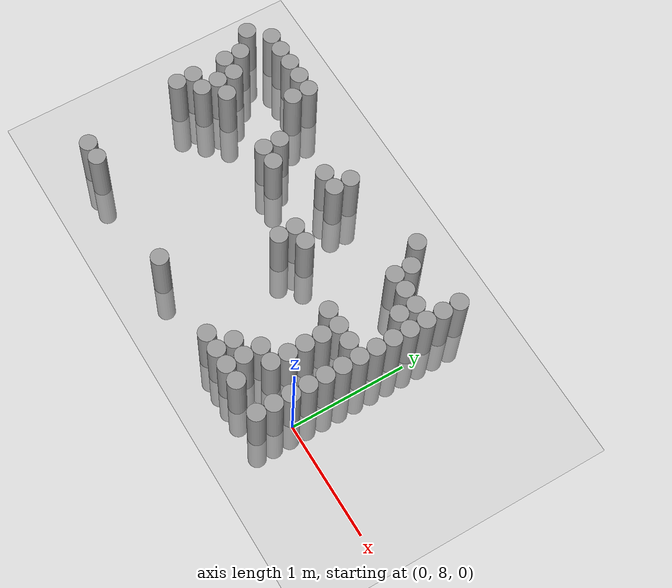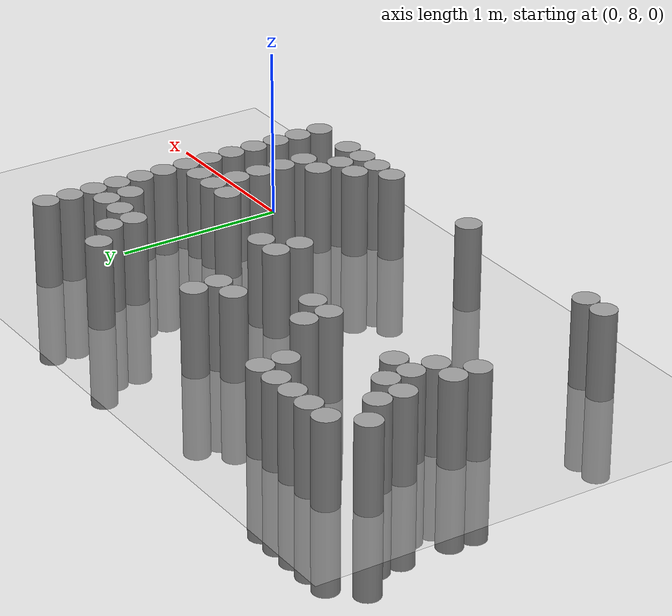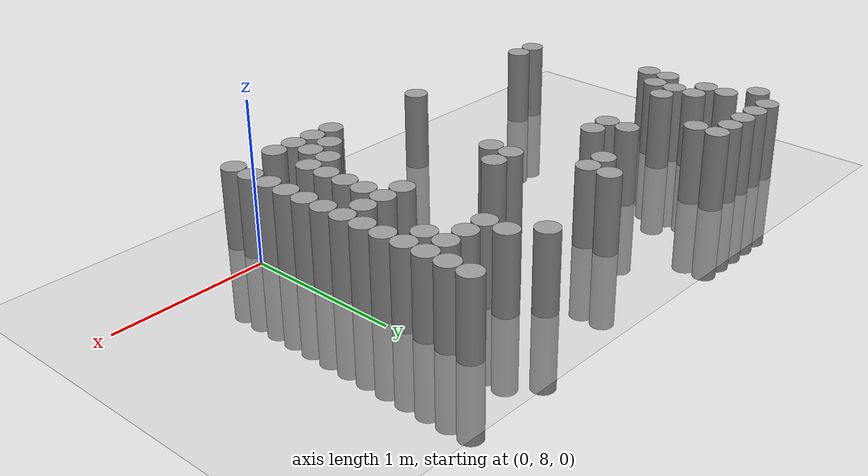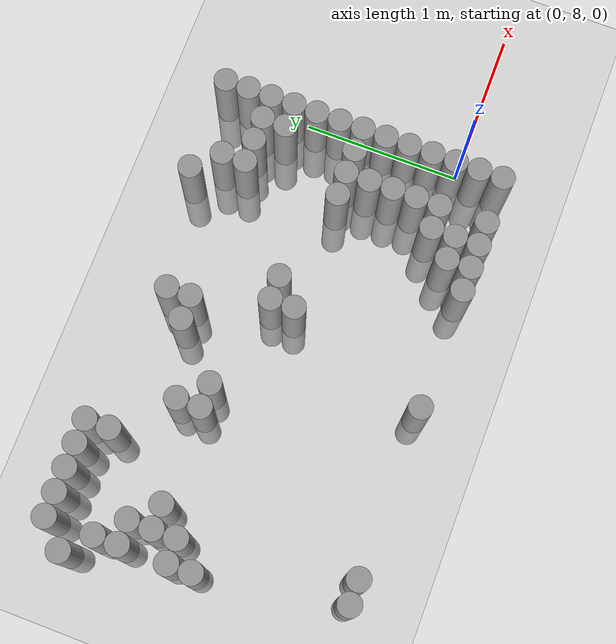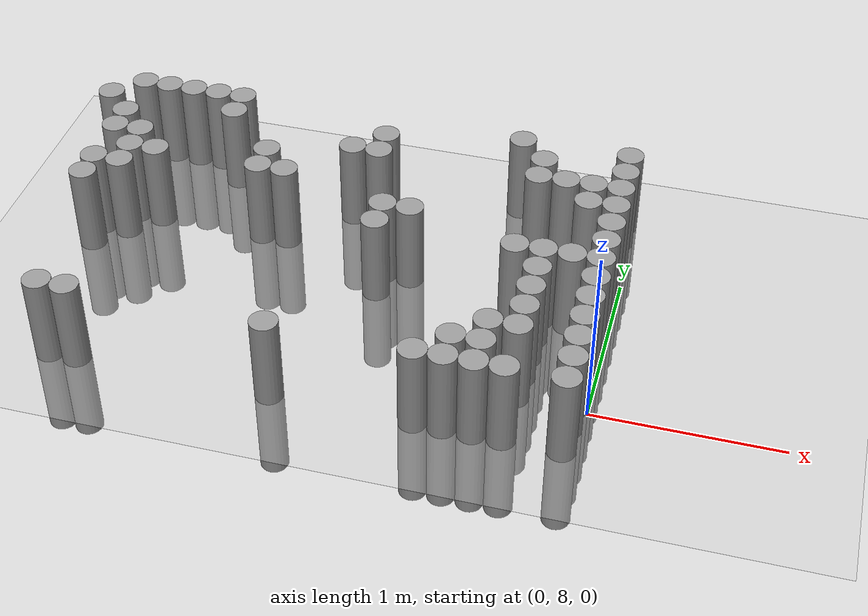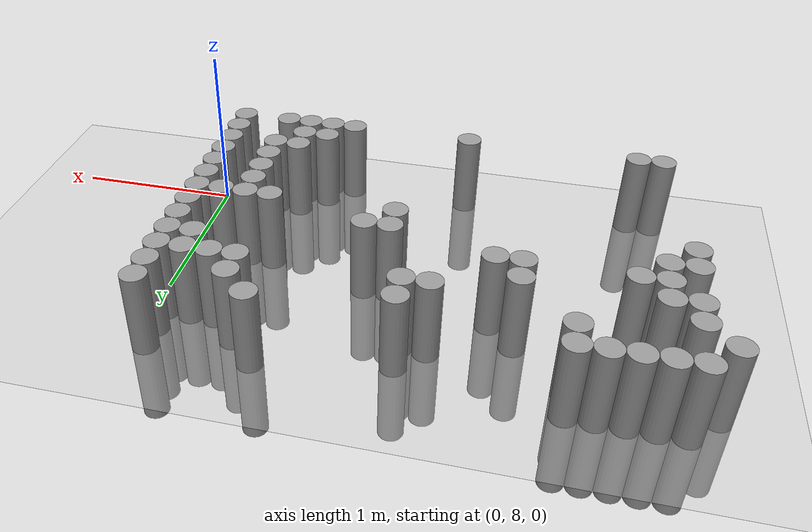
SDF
<sdf version="1.6">
 <world name="default">
  <model name="ground_plane">
   <static>1</static>
   <static>1</static>
   <link name="link">
    <collision name="collision">
     <geometry><plane><normal>0 0 1</normal><size>100 100</size></plane></geometry>
     <surface><friction><ode><mu>100</mu><mu2>50</mu2></ode></friction></surface>
    </collision>
    <visual name="visual">
     <cast_shadows>0</cast_shadows>
     <geometry><plane><normal>0 0 1</normal><size>100 100</size></plane></geometry>
     <material>
      <script><uri>file://media/materials/scripts/gazebo.material</uri><name>Gazebo/Grey</name></script>
     </material>
    </visual>
   </link>
  </model>
  <model name="unit_cylinder_167">
   <static>1</static>
   <pose>-3.075000 9.375000 0.000000 0.000000 0.000000 0.000000</pose>
   <link name="link">
    <inertial>
     <mass>1</mass>
     <inertia><ixx>0.145833</ixx><ixy>0</ixy><ixz>0</ixz><iyy>0.145833</iyy><iyz>0</iyz><izz>0.125</izz></inertia>
    </inertial>
    <collision name="collision">
     <geometry><cylinder><radius>0.075000</radius><length>1</length></cylinder></geometry>
    </collision>
    <visual name="visual">
     <geometry><cylinder><radius>0.075000</radius><length>1</length></cylinder></geometry>
     <material>
      <script><name>Gazebo/Grey</name><uri>file://media/materials/scripts/gazebo.material</uri></script>
     </material>
    </visual>
   </link>
  </model>
  <model name="unit_cylinder_169">
   <static>1</static>
   <pose>-2.925000 8.625000 0.000000 0.000000 0.000000 0.000000</pose>
   <link name="link">
    <inertial>
     <mass>1</mass>
     <inertia><ixx>0.145833</ixx><ixy>0</ixy><ixz>0</ixz><iyy>0.145833</iyy><iyz>0</iyz><izz>0.125</izz></inertia>
    </inertial>
    <collision name="collision">
     <geometry><cylinder><radius>0.075000</radius><length>1</length></cylinder></geometry>
    </collision>
    <visual name="visual">
     <geometry><cylinder><radius>0.075000</radius><length>1</length></cylinder></geometry>
     <material>
      <script><name>Gazebo/Grey</name><uri>file://media/materials/scripts/gazebo.material</uri></script>
     </material>
    </visual>
   </link>
  </model>
  <model name="unit_cylinder_170">
   <static>1</static>
   <pose>-2.925000 8.775000 0.000000 0.000000 0.000000 0.000000</pose>
   <link name="link">
    <inertial>
     <mass>1</mass>
     <inertia><ixx>0.145833</ixx><ixy>0</ixy><ixz>0</ixz><iyy>0.145833</iyy><iyz>0</iyz><izz>0.125</izz></inertia>
    </inertial>
    <collision name="collision">
     <geometry><cylinder><radius>0.075000</radius><length>1</length></cylinder></geometry>
    </collision>
    <visual name="visual">
     <geometry><cylinder><radius>0.075000</radius><length>1</length></cylinder></geometry>
     <material>
      <script><name>Gazebo/Grey</name><uri>file://media/materials/scripts/gazebo.material</uri></script>
     </material>
    </visual>
   </link>
  </model>
  <model name="unit_cylinder_171">
   <static>1</static>
   <pose>-2.925000 9.075000 0.000000 0.000000 0.000000 0.000000</pose>
   <link name="link">
    <inertial>
     <mass>1</mass>
     <inertia><ixx>0.145833</ixx><ixy>0</ixy><ixz>0</ixz><iyy>0.145833</iyy><iyz>0</iyz><izz>0.125</izz></inertia>
    </inertial>
    <collision name="collision">
     <geometry><cylinder><radius>0.075000</radius><length>1</length></cylinder></geometry>
    </collision>
    <visual name="visual">
     <geometry><cylinder><radius>0.075000</radius><length>1</length></cylinder></geometry>
     <material>
      <script><name>Gazebo/Grey</name><uri>file://media/materials/scripts/gazebo.material</uri></script>
     </material>
    </visual>
   </link>
  </model>
  <model name="unit_cylinder_172">
   <static>1</static>
   <pose>-2.925000 9.225000 0.000000 0.000000 0.000000 0.000000</pose>
   <link name="link">
    <inertial>
     <mass>1</mass>
     <inertia><ixx>0.145833</ixx><ixy>0</ixy><ixz>0</ixz><iyy>0.145833</iyy><iyz>0</iyz><izz>0.125</izz></inertia>
    </inertial>
    <collision name="collision">
     <geometry><cylinder><radius>0.075000</radius><length>1</length></cylinder></geometry>
    </collision>
    <visual name="visual">
     <geometry><cylinder><radius>0.075000</radius><length>1</length></cylinder></geometry>
     <material>
      <script><name>Gazebo/Grey</name><uri>file://media/materials/scripts/gazebo.material</uri></script>
     </material>
    </visual>
   </link>
  </model>
  <model name="unit_cylinder_173">
   <static>1</static>
   <pose>-2.925000 9.525000 0.000000 0.000000 0.000000 0.000000</pose>
   <link name="link">
    <inertial>
     <mass>1</mass>
     <inertia><ixx>0.145833</ixx><ixy>0</ixy><ixz>0</ixz><iyy>0.145833</iyy><iyz>0</iyz><izz>0.125</izz></inertia>
    </inertial>
    <collision name="collision">
     <geometry><cylinder><radius>0.075000</radius><length>1</length></cylinder></geometry>
    </collision>
    <visual name="visual">
     <geometry><cylinder><radius>0.075000</radius><length>1</length></cylinder></geometry>
     <material>
      <script><name>Gazebo/Grey</name><uri>file://media/materials/scripts/gazebo.material</uri></script>
     </material>
    </visual>
   </link>
  </model>
  <model name="unit_cylinder_176">
   <static>1</static>
   <pose>-2.775000 7.725000 0.000000 0.000000 0.000000 0.000000</pose>
   <link name="link">
    <inertial>
     <mass>1</mass>
     <inertia><ixx>0.145833</ixx><ixy>0</ixy><ixz>0</ixz><iyy>0.145833</iyy><iyz>0</iyz><izz>0.125</izz></inertia>
    </inertial>
    <collision name="collision">
     <geometry><cylinder><radius>0.075000</radius><length>1</length></cylinder></geometry>
    </collision>
    <visual name="visual">
     <geometry><cylinder><radius>0.075000</radius><length>1</length></cylinder></geometry>
     <material>
      <script><name>Gazebo/Grey</name><uri>file://media/materials/scripts/gazebo.material</uri></script>
     </material>
    </visual>
   </link>
  </model>
  <model name="unit_cylinder_177">
   <static>1</static>
   <pose>-2.775000 8.775000 0.000000 0.000000 0.000000 0.000000</pose>
   <link name="link">
    <inertial>
     <mass>1</mass>
     <inertia><ixx>0.145833</ixx><ixy>0</ixy><ixz>0</ixz><iyy>0.145833</iyy><iyz>0</iyz><izz>0.125</izz></inertia>
    </inertial>
    <collision name="collision">
     <geometry><cylinder><radius>0.075000</radius><length>1</length></cylinder></geometry>
    </collision>
    <visual name="visual">
     <geometry><cylinder><radius>0.075000</radius><length>1</length></cylinder></geometry>
     <material>
      <script><name>Gazebo/Grey</name><uri>file://media/materials/scripts/gazebo.material</uri></script>
     </material>
    </visual>
   </link>
  </model>
  <model name="unit_cylinder_178">
   <static>1</static>
   <pose>-2.775000 8.925000 0.000000 0.000000 0.000000 0.000000</pose>
   <link name="link">
    <inertial>
     <mass>1</mass>
     <inertia><ixx>0.145833</ixx><ixy>0</ixy><ixz>0</ixz><iyy>0.145833</iyy><iyz>0</iyz><izz>0.125</izz></inertia>
    </inertial>
    <collision name="collision">
     <geometry><cylinder><radius>0.075000</radius><length>1</length></cylinder></geometry>
    </collision>
    <visual name="visual">
     <geometry><cylinder><radius>0.075000</radius><length>1</length></cylinder></geometry>
     <material>
      <script><name>Gazebo/Grey</name><uri>file://media/materials/scripts/gazebo.material</uri></script>
     </material>
    </visual>
   </link>
  </model>
  <model name="unit_cylinder_179">
   <static>1</static>
   <pose>-2.775000 9.075000 0.000000 0.000000 0.000000 0.000000</pose>
   <link name="link">
    <inertial>
     <mass>1</mass>
     <inertia><ixx>0.145833</ixx><ixy>0</ixy><ixz>0</ixz><iyy>0.145833</iyy><iyz>0</iyz><izz>0.125</izz></inertia>
    </inertial>
    <collision name="collision">
     <geometry><cylinder><radius>0.075000</radius><length>1</length></cylinder></geometry>
    </collision>
    <visual name="visual">
     <geometry><cylinder><radius>0.075000</radius><length>1</length></cylinder></geometry>
     <material>
      <script><name>Gazebo/Grey</name><uri>file://media/materials/scripts/gazebo.material</uri></script>
     </material>
    </visual>
   </link>
  </model>
  <model name="unit_cylinder_180">
   <static>1</static>
   <pose>-2.775000 9.525000 0.000000 0.000000 0.000000 0.000000</pose>
   <link name="link">
    <inertial>
     <mass>1</mass>
     <inertia><ixx>0.145833</ixx><ixy>0</ixy><ixz>0</ixz><iyy>0.145833</iyy><iyz>0</iyz><izz>0.125</izz></inertia>
    </inertial>
    <collision name="collision">
     <geometry><cylinder><radius>0.075000</radius><length>1</length></cylinder></geometry>
    </collision>
    <visual name="visual">
     <geometry><cylinder><radius>0.075000</radius><length>1</length></cylinder></geometry>
     <material>
      <script><name>Gazebo/Grey</name><uri>file://media/materials/scripts/gazebo.material</uri></script>
     </material>
    </visual>
   </link>
  </model>
  <model name="unit_cylinder_182">
   <static>1</static>
   <pose>-2.625000 7.725000 0.000000 0.000000 0.000000 0.000000</pose>
   <link name="link">
    <inertial>
     <mass>1</mass>
     <inertia><ixx>0.145833</ixx><ixy>0</ixy><ixz>0</ixz><iyy>0.145833</iyy><iyz>0</iyz><izz>0.125</izz></inertia>
    </inertial>
    <collision name="collision">
     <geometry><cylinder><radius>0.075000</radius><length>1</length></cylinder></geometry>
    </collision>
    <visual name="visual">
     <geometry><cylinder><radius>0.075000</radius><length>1</length></cylinder></geometry>
     <material>
      <script><name>Gazebo/Grey</name><uri>file://media/materials/scripts/gazebo.material</uri></script>
     </material>
    </visual>
   </link>
  </model>
  <model name="unit_cylinder_183">
   <static>1</static>
   <pose>-2.625000 8.925000 0.000000 0.000000 0.000000 0.000000</pose>
   <link name="link">
    <inertial>
     <mass>1</mass>
     <inertia><ixx>0.145833</ixx><ixy>0</ixy><ixz>0</ixz><iyy>0.145833</iyy><iyz>0</iyz><izz>0.125</izz></inertia>
    </inertial>
    <collision name="collision">
     <geometry><cylinder><radius>0.075000</radius><length>1</length></cylinder></geometry>
    </collision>
    <visual name="visual">
     <geometry><cylinder><radius>0.075000</radius><length>1</length></cylinder></geometry>
     <material>
      <script><name>Gazebo/Grey</name><uri>file://media/materials/scripts/gazebo.material</uri></script>
     </material>
    </visual>
   </link>
  </model>
  <model name="unit_cylinder_184">
   <static>1</static>
   <pose>-2.625000 9.525000 0.000000 0.000000 0.000000 0.000000</pose>
   <link name="link">
    <inertial>
     <mass>1</mass>
     <inertia><ixx>0.145833</ixx><ixy>0</ixy><ixz>0</ixz><iyy>0.145833</iyy><iyz>0</iyz><izz>0.125</izz></inertia>
    </inertial>
    <collision name="collision">
     <geometry><cylinder><radius>0.075000</radius><length>1</length></cylinder></geometry>
    </collision>
    <visual name="visual">
     <geometry><cylinder><radius>0.075000</radius><length>1</length></cylinder></geometry>
     <material>
      <script><name>Gazebo/Grey</name><uri>file://media/materials/scripts/gazebo.material</uri></script>
     </material>
    </visual>
   </link>
  </model>
  <model name="unit_cylinder_187">
   <static>1</static>
   <pose>-2.475000 9.525000 0.000000 0.000000 0.000000 0.000000</pose>
   <link name="link">
    <inertial>
     <mass>1</mass>
     <inertia><ixx>0.145833</ixx><ixy>0</ixy><ixz>0</ixz><iyy>0.145833</iyy><iyz>0</iyz><izz>0.125</izz></inertia>
    </inertial>
    <collision name="collision">
     <geometry><cylinder><radius>0.075000</radius><length>1</length></cylinder></geometry>
    </collision>
    <visual name="visual">
     <geometry><cylinder><radius>0.075000</radius><length>1</length></cylinder></geometry>
     <material>
      <script><name>Gazebo/Grey</name><uri>file://media/materials/scripts/gazebo.material</uri></script>
     </material>
    </visual>
   </link>
  </model>
  <model name="unit_cylinder_191">
   <static>1</static>
   <pose>-2.325000 9.375000 0.000000 0.000000 0.000000 0.000000</pose>
   <link name="link">
    <inertial>
     <mass>1</mass>
     <inertia><ixx>0.145833</ixx><ixy>0</ixy><ixz>0</ixz><iyy>0.145833</iyy><iyz>0</iyz><izz>0.125</izz></inertia>
    </inertial>
    <collision name="collision">
     <geometry><cylinder><radius>0.075000</radius><length>1</length></cylinder></geometry>
    </collision>
    <visual name="visual">
     <geometry><cylinder><radius>0.075000</radius><length>1</length></cylinder></geometry>
     <material>
      <script><name>Gazebo/Grey</name><uri>file://media/materials/scripts/gazebo.material</uri></script>
     </material>
    </visual>
   </link>
  </model>
  <model name="unit_cylinder_192">
   <static>1</static>
   <pose>-2.325000 9.525000 0.000000 0.000000 0.000000 0.000000</pose>
   <link name="link">
    <inertial>
     <mass>1</mass>
     <inertia><ixx>0.145833</ixx><ixy>0</ixy><ixz>0</ixz><iyy>0.145833</iyy><iyz>0</iyz><izz>0.125</izz></inertia>
    </inertial>
    <collision name="collision">
     <geometry><cylinder><radius>0.075000</radius><length>1</length></cylinder></geometry>
    </collision>
    <visual name="visual">
     <geometry><cylinder><radius>0.075000</radius><length>1</length></cylinder></geometry>
     <material>
      <script><name>Gazebo/Grey</name><uri>file://media/materials/scripts/gazebo.material</uri></script>
     </material>
    </visual>
   </link>
  </model>
  <model name="unit_cylinder_197">
   <static>1</static>
   <pose>-2.025000 8.925000 0.000000 0.000000 0.000000 0.000000</pose>
   <link name="link">
    <inertial>
     <mass>1</mass>
     <inertia><ixx>0.145833</ixx><ixy>0</ixy><ixz>0</ixz><iyy>0.145833</iyy><iyz>0</iyz><izz>0.125</izz></inertia>
    </inertial>
    <collision name="collision">
     <geometry><cylinder><radius>0.075000</radius><length>1</length></cylinder></geometry>
    </collision>
    <visual name="visual">
     <geometry><cylinder><radius>0.075000</radius><length>1</length></cylinder></geometry>
     <material>
      <script><name>Gazebo/Grey</name><uri>file://media/materials/scripts/gazebo.material</uri></script>
     </material>
    </visual>
   </link>
  </model>
  <model name="unit_cylinder_198">
   <static>1</static>
   <pose>-2.025000 9.075000 0.000000 0.000000 0.000000 0.000000</pose>
   <link name="link">
    <inertial>
     <mass>1</mass>
     <inertia><ixx>0.145833</ixx><ixy>0</ixy><ixz>0</ixz><iyy>0.145833</iyy><iyz>0</iyz><izz>0.125</izz></inertia>
    </inertial>
    <collision name="collision">
     <geometry><cylinder><radius>0.075000</radius><length>1</length></cylinder></geometry>
    </collision>
    <visual name="visual">
     <geometry><cylinder><radius>0.075000</radius><length>1</length></cylinder></geometry>
     <material>
      <script><name>Gazebo/Grey</name><uri>file://media/materials/scripts/gazebo.material</uri></script>
     </material>
    </visual>
   </link>
  </model>
  <model name="unit_cylinder_203">
   <static>1</static>
   <pose>-1.875000 8.925000 0.000000 0.000000 0.000000 0.000000</pose>
   <link name="link">
    <inertial>
     <mass>1</mass>
     <inertia><ixx>0.145833</ixx><ixy>0</ixy><ixz>0</ixz><iyy>0.145833</iyy><iyz>0</iyz><izz>0.125</izz></inertia>
    </inertial>
    <collision name="collision">
     <geometry><cylinder><radius>0.075000</radius><length>1</length></cylinder></geometry>
    </collision>
    <visual name="visual">
     <geometry><cylinder><radius>0.075000</radius><length>1</length></cylinder></geometry>
     <material>
      <script><name>Gazebo/Grey</name><uri>file://media/materials/scripts/gazebo.material</uri></script>
     </material>
    </visual>
   </link>
  </model>
  <model name="unit_cylinder_213">
   <static>1</static>
   <pose>-1.575000 7.725000 0.000000 0.000000 0.000000 0.000000</pose>
   <link name="link">
    <inertial>
     <mass>1</mass>
     <inertia><ixx>0.145833</ixx><ixy>0</ixy><ixz>0</ixz><iyy>0.145833</iyy><iyz>0</iyz><izz>0.125</izz></inertia>
    </inertial>
    <collision name="collision">
     <geometry><cylinder><radius>0.075000</radius><length>1</length></cylinder></geometry>
    </collision>
    <visual name="visual">
     <geometry><cylinder><radius>0.075000</radius><length>1</length></cylinder></geometry>
     <material>
      <script><name>Gazebo/Grey</name><uri>file://media/materials/scripts/gazebo.material</uri></script>
     </material>
    </visual>
   </link>
  </model>
  <model name="unit_cylinder_214">
   <static>1</static>
   <pose>-1.575000 9.225000 0.000000 0.000000 0.000000 0.000000</pose>
   <link name="link">
    <inertial>
     <mass>1</mass>
     <inertia><ixx>0.145833</ixx><ixy>0</ixy><ixz>0</ixz><iyy>0.145833</iyy><iyz>0</iyz><izz>0.125</izz></inertia>
    </inertial>
    <collision name="collision">
     <geometry><cylinder><radius>0.075000</radius><length>1</length></cylinder></geometry>
    </collision>
    <visual name="visual">
     <geometry><cylinder><radius>0.075000</radius><length>1</length></cylinder></geometry>
     <material>
      <script><name>Gazebo/Grey</name><uri>file://media/materials/scripts/gazebo.material</uri></script>
     </material>
    </visual>
   </link>
  </model>
  <model name="unit_cylinder_220">
   <static>1</static>
   <pose>-1.425000 9.225000 0.000000 0.000000 0.000000 0.000000</pose>
   <link name="link">
    <inertial>
     <mass>1</mass>
     <inertia><ixx>0.145833</ixx><ixy>0</ixy><ixz>0</ixz><iyy>0.145833</iyy><iyz>0</iyz><izz>0.125</izz></inertia>
    </inertial>
    <collision name="collision">
     <geometry><cylinder><radius>0.075000</radius><length>1</length></cylinder></geometry>
    </collision>
    <visual name="visual">
     <geometry><cylinder><radius>0.075000</radius><length>1</length></cylinder></geometry>
     <material>
      <script><name>Gazebo/Grey</name><uri>file://media/materials/scripts/gazebo.material</uri></script>
     </material>
    </visual>
   </link>
  </model>
  <model name="unit_cylinder_221">
   <static>1</static>
   <pose>-1.425000 9.375000 0.000000 0.000000 0.000000 0.000000</pose>
   <link name="link">
    <inertial>
     <mass>1</mass>
     <inertia><ixx>0.145833</ixx><ixy>0</ixy><ixz>0</ixz><iyy>0.145833</iyy><iyz>0</iyz><izz>0.125</izz></inertia>
    </inertial>
    <collision name="collision">
     <geometry><cylinder><radius>0.075000</radius><length>1</length></cylinder></geometry>
    </collision>
    <visual name="visual">
     <geometry><cylinder><radius>0.075000</radius><length>1</length></cylinder></geometry>
     <material>
      <script><name>Gazebo/Grey</name><uri>file://media/materials/scripts/gazebo.material</uri></script>
     </material>
    </visual>
   </link>
  </model>
  <model name="unit_cylinder_225">
   <static>1</static>
   <pose>-1.275000 8.625000 0.000000 0.000000 0.000000 0.000000</pose>
   <link name="link">
    <inertial>
     <mass>1</mass>
     <inertia><ixx>0.145833</ixx><ixy>0</ixy><ixz>0</ixz><iyy>0.145833</iyy><iyz>0</iyz><izz>0.125</izz></inertia>
    </inertial>
    <collision name="collision">
     <geometry><cylinder><radius>0.075000</radius><length>1</length></cylinder></geometry>
    </collision>
    <visual name="visual">
     <geometry><cylinder><radius>0.075000</radius><length>1</length></cylinder></geometry>
     <material>
      <script><name>Gazebo/Grey</name><uri>file://media/materials/scripts/gazebo.material</uri></script>
     </material>
    </visual>
   </link>
  </model>
  <model name="unit_cylinder_226">
   <static>1</static>
   <pose>-1.275000 8.775000 0.000000 0.000000 0.000000 0.000000</pose>
   <link name="link">
    <inertial>
     <mass>1</mass>
     <inertia><ixx>0.145833</ixx><ixy>0</ixy><ixz>0</ixz><iyy>0.145833</iyy><iyz>0</iyz><izz>0.125</izz></inertia>
    </inertial>
    <collision name="collision">
     <geometry><cylinder><radius>0.075000</radius><length>1</length></cylinder></geometry>
    </collision>
    <visual name="visual">
     <geometry><cylinder><radius>0.075000</radius><length>1</length></cylinder></geometry>
     <material>
      <script><name>Gazebo/Grey</name><uri>file://media/materials/scripts/gazebo.material</uri></script>
     </material>
    </visual>
   </link>
  </model>
  <model name="unit_cylinder_229">
   <static>1</static>
   <pose>-1.125000 8.775000 0.000000 0.000000 0.000000 0.000000</pose>
   <link name="link">
    <inertial>
     <mass>1</mass>
     <inertia><ixx>0.145833</ixx><ixy>0</ixy><ixz>0</ixz><iyy>0.145833</iyy><iyz>0</iyz><izz>0.125</izz></inertia>
    </inertial>
    <collision name="collision">
     <geometry><cylinder><radius>0.075000</radius><length>1</length></cylinder></geometry>
    </collision>
    <visual name="visual">
     <geometry><cylinder><radius>0.075000</radius><length>1</length></cylinder></geometry>
     <material>
      <script><name>Gazebo/Grey</name><uri>file://media/materials/scripts/gazebo.material</uri></script>
     </material>
    </visual>
   </link>
  </model>
  <model name="unit_cylinder_235">
   <static>1</static>
   <pose>-0.825000 7.725000 0.000000 0.000000 0.000000 0.000000</pose>
   <link name="link">
    <inertial>
     <mass>1</mass>
     <inertia><ixx>0.145833</ixx><ixy>0</ixy><ixz>0</ixz><iyy>0.145833</iyy><iyz>0</iyz><izz>0.125</izz></inertia>
    </inertial>
    <collision name="collision">
     <geometry><cylinder><radius>0.075000</radius><length>1</length></cylinder></geometry>
    </collision>
    <visual name="visual">
     <geometry><cylinder><radius>0.075000</radius><length>1</length></cylinder></geometry>
     <material>
      <script><name>Gazebo/Grey</name><uri>file://media/materials/scripts/gazebo.material</uri></script>
     </material>
    </visual>
   </link>
  </model>
  <model name="unit_cylinder_236">
   <static>1</static>
   <pose>-0.675000 7.725000 0.000000 0.000000 0.000000 0.000000</pose>
   <link name="link">
    <inertial>
     <mass>1</mass>
     <inertia><ixx>0.145833</ixx><ixy>0</ixy><ixz>0</ixz><iyy>0.145833</iyy><iyz>0</iyz><izz>0.125</izz></inertia>
    </inertial>
    <collision name="collision">
     <geometry><cylinder><radius>0.075000</radius><length>1</length></cylinder></geometry>
    </collision>
    <visual name="visual">
     <geometry><cylinder><radius>0.075000</radius><length>1</length></cylinder></geometry>
     <material>
      <script><name>Gazebo/Grey</name><uri>file://media/materials/scripts/gazebo.material</uri></script>
     </material>
    </visual>
   </link>
  </model>
  <model name="unit_cylinder_237">
   <static>1</static>
   <pose>-0.675000 7.875000 0.000000 0.000000 0.000000 0.000000</pose>
   <link name="link">
    <inertial>
     <mass>1</mass>
     <inertia><ixx>0.145833</ixx><ixy>0</ixy><ixz>0</ixz><iyy>0.145833</iyy><iyz>0</iyz><izz>0.125</izz></inertia>
    </inertial>
    <collision name="collision">
     <geometry><cylinder><radius>0.075000</radius><length>1</length></cylinder></geometry>
    </collision>
    <visual name="visual">
     <geometry><cylinder><radius>0.075000</radius><length>1</length></cylinder></geometry>
     <material>
      <script><name>Gazebo/Grey</name><uri>file://media/materials/scripts/gazebo.material</uri></script>
     </material>
    </visual>
   </link>
  </model>
  <model name="unit_cylinder_238">
   <static>1</static>
   <pose>-0.675000 9.525000 0.000000 0.000000 0.000000 0.000000</pose>
   <link name="link">
    <inertial>
     <mass>1</mass>
     <inertia><ixx>0.145833</ixx><ixy>0</ixy><ixz>0</ixz><iyy>0.145833</iyy><iyz>0</iyz><izz>0.125</izz></inertia>
    </inertial>
    <collision name="collision">
     <geometry><cylinder><radius>0.075000</radius><length>1</length></cylinder></geometry>
    </collision>
    <visual name="visual">
     <geometry><cylinder><radius>0.075000</radius><length>1</length></cylinder></geometry>
     <material>
      <script><name>Gazebo/Grey</name><uri>file://media/materials/scripts/gazebo.material</uri></script>
     </material>
    </visual>
   </link>
  </model>
  <model name="unit_cylinder_239">
   <static>1</static>
   <pose>-0.525000 7.725000 0.000000 0.000000 0.000000 0.000000</pose>
   <link name="link">
    <inertial>
     <mass>1</mass>
     <inertia><ixx>0.145833</ixx><ixy>0</ixy><ixz>0</ixz><iyy>0.145833</iyy><iyz>0</iyz><izz>0.125</izz></inertia>
    </inertial>
    <collision name="collision">
     <geometry><cylinder><radius>0.075000</radius><length>1</length></cylinder></geometry>
    </collision>
    <visual name="visual">
     <geometry><cylinder><radius>0.075000</radius><length>1</length></cylinder></geometry>
     <material>
      <script><name>Gazebo/Grey</name><uri>file://media/materials/scripts/gazebo.material</uri></script>
     </material>
    </visual>
   </link>
  </model>
  <model name="unit_cylinder_240">
   <static>1</static>
   <pose>-0.525000 7.875000 0.000000 0.000000 0.000000 0.000000</pose>
   <link name="link">
    <inertial>
     <mass>1</mass>
     <inertia><ixx>0.145833</ixx><ixy>0</ixy><ixz>0</ixz><iyy>0.145833</iyy><iyz>0</iyz><izz>0.125</izz></inertia>
    </inertial>
    <collision name="collision">
     <geometry><cylinder><radius>0.075000</radius><length>1</length></cylinder></geometry>
    </collision>
    <visual name="visual">
     <geometry><cylinder><radius>0.075000</radius><length>1</length></cylinder></geometry>
     <material>
      <script><name>Gazebo/Grey</name><uri>file://media/materials/scripts/gazebo.material</uri></script>
     </material>
    </visual>
   </link>
  </model>
  <model name="unit_cylinder_241">
   <static>1</static>
   <pose>-0.525000 8.025000 0.000000 0.000000 0.000000 0.000000</pose>
   <link name="link">
    <inertial>
     <mass>1</mass>
     <inertia><ixx>0.145833</ixx><ixy>0</ixy><ixz>0</ixz><iyy>0.145833</iyy><iyz>0</iyz><izz>0.125</izz></inertia>
    </inertial>
    <collision name="collision">
     <geometry><cylinder><radius>0.075000</radius><length>1</length></cylinder></geometry>
    </collision>
    <visual name="visual">
     <geometry><cylinder><radius>0.075000</radius><length>1</length></cylinder></geometry>
     <material>
      <script><name>Gazebo/Grey</name><uri>file://media/materials/scripts/gazebo.material</uri></script>
     </material>
    </visual>
   </link>
  </model>
  <model name="unit_cylinder_242">
   <static>1</static>
   <pose>-0.525000 8.625000 0.000000 0.000000 0.000000 0.000000</pose>
   <link name="link">
    <inertial>
     <mass>1</mass>
     <inertia><ixx>0.145833</ixx><ixy>0</ixy><ixz>0</ixz><iyy>0.145833</iyy><iyz>0</iyz><izz>0.125</izz></inertia>
    </inertial>
    <collision name="collision">
     <geometry><cylinder><radius>0.075000</radius><length>1</length></cylinder></geometry>
    </collision>
    <visual name="visual">
     <geometry><cylinder><radius>0.075000</radius><length>1</length></cylinder></geometry>
     <material>
      <script><name>Gazebo/Grey</name><uri>file://media/materials/scripts/gazebo.material</uri></script>
     </material>
    </visual>
   </link>
  </model>
  <model name="unit_cylinder_243">
   <static>1</static>
   <pose>-0.525000 9.225000 0.000000 0.000000 0.000000 0.000000</pose>
   <link name="link">
    <inertial>
     <mass>1</mass>
     <inertia><ixx>0.145833</ixx><ixy>0</ixy><ixz>0</ixz><iyy>0.145833</iyy><iyz>0</iyz><izz>0.125</izz></inertia>
    </inertial>
    <collision name="collision">
     <geometry><cylinder><radius>0.075000</radius><length>1</length></cylinder></geometry>
    </collision>
    <visual name="visual">
     <geometry><cylinder><radius>0.075000</radius><length>1</length></cylinder></geometry>
     <material>
      <script><name>Gazebo/Grey</name><uri>file://media/materials/scripts/gazebo.material</uri></script>
     </material>
    </visual>
   </link>
  </model>
  <model name="unit_cylinder_244">
   <static>1</static>
   <pose>-0.525000 9.375000 0.000000 0.000000 0.000000 0.000000</pose>
   <link name="link">
    <inertial>
     <mass>1</mass>
     <inertia><ixx>0.145833</ixx><ixy>0</ixy><ixz>0</ixz><iyy>0.145833</iyy><iyz>0</iyz><izz>0.125</izz></inertia>
    </inertial>
    <collision name="collision">
     <geometry><cylinder><radius>0.075000</radius><length>1</length></cylinder></geometry>
    </collision>
    <visual name="visual">
     <geometry><cylinder><radius>0.075000</radius><length>1</length></cylinder></geometry>
     <material>
      <script><name>Gazebo/Grey</name><uri>file://media/materials/scripts/gazebo.material</uri></script>
     </material>
    </visual>
   </link>
  </model>
  <model name="unit_cylinder_248">
   <static>1</static>
   <pose>-0.375000 7.725000 0.000000 0.000000 0.000000 0.000000</pose>
   <link name="link">
    <inertial>
     <mass>1</mass>
     <inertia><ixx>0.145833</ixx><ixy>0</ixy><ixz>0</ixz><iyy>0.145833</iyy><iyz>0</iyz><izz>0.125</izz></inertia>
    </inertial>
    <collision name="collision">
     <geometry><cylinder><radius>0.075000</radius><length>1</length></cylinder></geometry>
    </collision>
    <visual name="visual">
     <geometry><cylinder><radius>0.075000</radius><length>1</length></cylinder></geometry>
     <material>
      <script><name>Gazebo/Grey</name><uri>file://media/materials/scripts/gazebo.material</uri></script>
     </material>
    </visual>
   </link>
  </model>
  <model name="unit_cylinder_249">
   <static>1</static>
   <pose>-0.375000 8.025000 0.000000 0.000000 0.000000 0.000000</pose>
   <link name="link">
    <inertial>
     <mass>1</mass>
     <inertia><ixx>0.145833</ixx><ixy>0</ixy><ixz>0</ixz><iyy>0.145833</iyy><iyz>0</iyz><izz>0.125</izz></inertia>
    </inertial>
    <collision name="collision">
     <geometry><cylinder><radius>0.075000</radius><length>1</length></cylinder></geometry>
    </collision>
    <visual name="visual">
     <geometry><cylinder><radius>0.075000</radius><length>1</length></cylinder></geometry>
     <material>
      <script><name>Gazebo/Grey</name><uri>file://media/materials/scripts/gazebo.material</uri></script>
     </material>
    </visual>
   </link>
  </model>
  <model name="unit_cylinder_250">
   <static>1</static>
   <pose>-0.375000 8.175000 0.000000 0.000000 0.000000 0.000000</pose>
   <link name="link">
    <inertial>
     <mass>1</mass>
     <inertia><ixx>0.145833</ixx><ixy>0</ixy><ixz>0</ixz><iyy>0.145833</iyy><iyz>0</iyz><izz>0.125</izz></inertia>
    </inertial>
    <collision name="collision">
     <geometry><cylinder><radius>0.075000</radius><length>1</length></cylinder></geometry>
    </collision>
    <visual name="visual">
     <geometry><cylinder><radius>0.075000</radius><length>1</length></cylinder></geometry>
     <material>
      <script><name>Gazebo/Grey</name><uri>file://media/materials/scripts/gazebo.material</uri></script>
     </material>
    </visual>
   </link>
  </model>
  <model name="unit_cylinder_251">
   <static>1</static>
   <pose>-0.375000 8.325000 0.000000 0.000000 0.000000 0.000000</pose>
   <link name="link">
    <inertial>
     <mass>1</mass>
     <inertia><ixx>0.145833</ixx><ixy>0</ixy><ixz>0</ixz><iyy>0.145833</iyy><iyz>0</iyz><izz>0.125</izz></inertia>
    </inertial>
    <collision name="collision">
     <geometry><cylinder><radius>0.075000</radius><length>1</length></cylinder></geometry>
    </collision>
    <visual name="visual">
     <geometry><cylinder><radius>0.075000</radius><length>1</length></cylinder></geometry>
     <material>
      <script><name>Gazebo/Grey</name><uri>file://media/materials/scripts/gazebo.material</uri></script>
     </material>
    </visual>
   </link>
  </model>
  <model name="unit_cylinder_252">
   <static>1</static>
   <pose>-0.375000 8.475000 0.000000 0.000000 0.000000 0.000000</pose>
   <link name="link">
    <inertial>
     <mass>1</mass>
     <inertia><ixx>0.145833</ixx><ixy>0</ixy><ixz>0</ixz><iyy>0.145833</iyy><iyz>0</iyz><izz>0.125</izz></inertia>
    </inertial>
    <collision name="collision">
     <geometry><cylinder><radius>0.075000</radius><length>1</length></cylinder></geometry>
    </collision>
    <visual name="visual">
     <geometry><cylinder><radius>0.075000</radius><length>1</length></cylinder></geometry>
     <material>
      <script><name>Gazebo/Grey</name><uri>file://media/materials/scripts/gazebo.material</uri></script>
     </material>
    </visual>
   </link>
  </model>
  <model name="unit_cylinder_253">
   <static>1</static>
   <pose>-0.375000 8.625000 0.000000 0.000000 0.000000 0.000000</pose>
   <link name="link">
    <inertial>
     <mass>1</mass>
     <inertia><ixx>0.145833</ixx><ixy>0</ixy><ixz>0</ixz><iyy>0.145833</iyy><iyz>0</iyz><izz>0.125</izz></inertia>
    </inertial>
    <collision name="collision">
     <geometry><cylinder><radius>0.075000</radius><length>1</length></cylinder></geometry>
    </collision>
    <visual name="visual">
     <geometry><cylinder><radius>0.075000</radius><length>1</length></cylinder></geometry>
     <material>
      <script><name>Gazebo/Grey</name><uri>file://media/materials/scripts/gazebo.material</uri></script>
     </material>
    </visual>
   </link>
  </model>
  <model name="unit_cylinder_254">
   <static>1</static>
   <pose>-0.375000 9.225000 0.000000 0.000000 0.000000 0.000000</pose>
   <link name="link">
    <inertial>
     <mass>1</mass>
     <inertia><ixx>0.145833</ixx><ixy>0</ixy><ixz>0</ixz><iyy>0.145833</iyy><iyz>0</iyz><izz>0.125</izz></inertia>
    </inertial>
    <collision name="collision">
     <geometry><cylinder><radius>0.075000</radius><length>1</length></cylinder></geometry>
    </collision>
    <visual name="visual">
     <geometry><cylinder><radius>0.075000</radius><length>1</length></cylinder></geometry>
     <material>
      <script><name>Gazebo/Grey</name><uri>file://media/materials/scripts/gazebo.material</uri></script>
     </material>
    </visual>
   </link>
  </model>
  <model name="unit_cylinder_266">
   <static>1</static>
   <pose>-0.225000 8.625000 0.000000 0.000000 0.000000 0.000000</pose>
   <link name="link">
    <inertial>
     <mass>1</mass>
     <inertia><ixx>0.145833</ixx><ixy>0</ixy><ixz>0</ixz><iyy>0.145833</iyy><iyz>0</iyz><izz>0.125</izz></inertia>
    </inertial>
    <collision name="collision">
     <geometry><cylinder><radius>0.075000</radius><length>1</length></cylinder></geometry>
    </collision>
    <visual name="visual">
     <geometry><cylinder><radius>0.075000</radius><length>1</length></cylinder></geometry>
     <material>
      <script><name>Gazebo/Grey</name><uri>file://media/materials/scripts/gazebo.material</uri></script>
     </material>
    </visual>
   </link>
  </model>
  <model name="unit_cylinder_267">
   <static>1</static>
   <pose>-0.225000 9.075000 0.000000 0.000000 0.000000 0.000000</pose>
   <link name="link">
    <inertial>
     <mass>1</mass>
     <inertia><ixx>0.145833</ixx><ixy>0</ixy><ixz>0</ixz><iyy>0.145833</iyy><iyz>0</iyz><izz>0.125</izz></inertia>
    </inertial>
    <collision name="collision">
     <geometry><cylinder><radius>0.075000</radius><length>1</length></cylinder></geometry>
    </collision>
    <visual name="visual">
     <geometry><cylinder><radius>0.075000</radius><length>1</length></cylinder></geometry>
     <material>
      <script><name>Gazebo/Grey</name><uri>file://media/materials/scripts/gazebo.material</uri></script>
     </material>
    </visual>
   </link>
  </model>
  <model name="unit_cylinder_268">
   <static>1</static>
   <pose>-0.225000 9.225000 0.000000 0.000000 0.000000 0.000000</pose>
   <link name="link">
    <inertial>
     <mass>1</mass>
     <inertia><ixx>0.145833</ixx><ixy>0</ixy><ixz>0</ixz><iyy>0.145833</iyy><iyz>0</iyz><izz>0.125</izz></inertia>
    </inertial>
    <collision name="collision">
     <geometry><cylinder><radius>0.075000</radius><length>1</length></cylinder></geometry>
    </collision>
    <visual name="visual">
     <geometry><cylinder><radius>0.075000</radius><length>1</length></cylinder></geometry>
     <material>
      <script><name>Gazebo/Grey</name><uri>file://media/materials/scripts/gazebo.material</uri></script>
     </material>
    </visual>
   </link>
  </model>
  <model name="unit_cylinder_286">
   <static>1</static>
   <pose>-0.075000 7.725000 0.000000 0.000000 0.000000 0.000000</pose>
   <link name="link">
    <inertial>
     <mass>1</mass>
     <inertia><ixx>0.145833</ixx><ixy>0</ixy><ixz>0</ixz><iyy>0.145833</iyy><iyz>0</iyz><izz>0.125</izz></inertia>
    </inertial>
    <collision name="collision">
     <geometry><cylinder><radius>0.075000</radius><length>1</length></cylinder></geometry>
    </collision>
    <visual name="visual">
     <geometry><cylinder><radius>0.075000</radius><length>1</length></cylinder></geometry>
     <material>
      <script><name>Gazebo/Grey</name><uri>file://media/materials/scripts/gazebo.material</uri></script>
     </material>
    </visual>
   </link>
  </model>
  <model name="unit_cylinder_287">
   <static>1</static>
   <pose>-0.075000 7.875000 0.000000 0.000000 0.000000 0.000000</pose>
   <link name="link">
    <inertial>
     <mass>1</mass>
     <inertia><ixx>0.145833</ixx><ixy>0</ixy><ixz>0</ixz><iyy>0.145833</iyy><iyz>0</iyz><izz>0.125</izz></inertia>
    </inertial>
    <collision name="collision">
     <geometry><cylinder><radius>0.075000</radius><length>1</length></cylinder></geometry>
    </collision>
    <visual name="visual">
     <geometry><cylinder><radius>0.075000</radius><length>1</length></cylinder></geometry>
     <material>
      <script><name>Gazebo/Grey</name><uri>file://media/materials/scripts/gazebo.material</uri></script>
     </material>
    </visual>
   </link>
  </model>
  <model name="unit_cylinder_288">
   <static>1</static>
   <pose>-0.075000 8.025000 0.000000 0.000000 0.000000 0.000000</pose>
   <link name="link">
    <inertial>
     <mass>1</mass>
     <inertia><ixx>0.145833</ixx><ixy>0</ixy><ixz>0</ixz><iyy>0.145833</iyy><iyz>0</iyz><izz>0.125</izz></inertia>
    </inertial>
    <collision name="collision">
     <geometry><cylinder><radius>0.075000</radius><length>1</length></cylinder></geometry>
    </collision>
    <visual name="visual">
     <geometry><cylinder><radius>0.075000</radius><length>1</length></cylinder></geometry>
     <material>
      <script><name>Gazebo/Grey</name><uri>file://media/materials/scripts/gazebo.material</uri></script>
     </material>
    </visual>
   </link>
  </model>
  <model name="unit_cylinder_289">
   <static>1</static>
   <pose>-0.075000 8.175000 0.000000 0.000000 0.000000 0.000000</pose>
   <link name="link">
    <inertial>
     <mass>1</mass>
     <inertia><ixx>0.145833</ixx><ixy>0</ixy><ixz>0</ixz><iyy>0.145833</iyy><iyz>0</iyz><izz>0.125</izz></inertia>
    </inertial>
    <collision name="collision">
     <geometry><cylinder><radius>0.075000</radius><length>1</length></cylinder></geometry>
    </collision>
    <visual name="visual">
     <geometry><cylinder><radius>0.075000</radius><length>1</length></cylinder></geometry>
     <material>
      <script><name>Gazebo/Grey</name><uri>file://media/materials/scripts/gazebo.material</uri></script>
     </material>
    </visual>
   </link>
  </model>
  <model name="unit_cylinder_290">
   <static>1</static>
   <pose>-0.075000 8.325000 0.000000 0.000000 0.000000 0.000000</pose>
   <link name="link">
    <inertial>
     <mass>1</mass>
     <inertia><ixx>0.145833</ixx><ixy>0</ixy><ixz>0</ixz><iyy>0.145833</iyy><iyz>0</iyz><izz>0.125</izz></inertia>
    </inertial>
    <collision name="collision">
     <geometry><cylinder><radius>0.075000</radius><length>1</length></cylinder></geometry>
    </collision>
    <visual name="visual">
     <geometry><cylinder><radius>0.075000</radius><length>1</length></cylinder></geometry>
     <material>
      <script><name>Gazebo/Grey</name><uri>file://media/materials/scripts/gazebo.material</uri></script>
     </material>
    </visual>
   </link>
  </model>
  <model name="unit_cylinder_291">
   <static>1</static>
   <pose>-0.075000 8.475000 0.000000 0.000000 0.000000 0.000000</pose>
   <link name="link">
    <inertial>
     <mass>1</mass>
     <inertia><ixx>0.145833</ixx><ixy>0</ixy><ixz>0</ixz><iyy>0.145833</iyy><iyz>0</iyz><izz>0.125</izz></inertia>
    </inertial>
    <collision name="collision">
     <geometry><cylinder><radius>0.075000</radius><length>1</length></cylinder></geometry>
    </collision>
    <visual name="visual">
     <geometry><cylinder><radius>0.075000</radius><length>1</length></cylinder></geometry>
     <material>
      <script><name>Gazebo/Grey</name><uri>file://media/materials/scripts/gazebo.material</uri></script>
     </material>
    </visual>
   </link>
  </model>
  <model name="unit_cylinder_292">
   <static>1</static>
   <pose>-0.075000 8.625000 0.000000 0.000000 0.000000 0.000000</pose>
   <link name="link">
    <inertial>
     <mass>1</mass>
     <inertia><ixx>0.145833</ixx><ixy>0</ixy><ixz>0</ixz><iyy>0.145833</iyy><iyz>0</iyz><izz>0.125</izz></inertia>
    </inertial>
    <collision name="collision">
     <geometry><cylinder><radius>0.075000</radius><length>1</length></cylinder></geometry>
    </collision>
    <visual name="visual">
     <geometry><cylinder><radius>0.075000</radius><length>1</length></cylinder></geometry>
     <material>
      <script><name>Gazebo/Grey</name><uri>file://media/materials/scripts/gazebo.material</uri></script>
     </material>
    </visual>
   </link>
  </model>
  <model name="unit_cylinder_293">
   <static>1</static>
   <pose>-0.075000 8.775000 0.000000 0.000000 0.000000 0.000000</pose>
   <link name="link">
    <inertial>
     <mass>1</mass>
     <inertia><ixx>0.145833</ixx><ixy>0</ixy><ixz>0</ixz><iyy>0.145833</iyy><iyz>0</iyz><izz>0.125</izz></inertia>
    </inertial>
    <collision name="collision">
     <geometry><cylinder><radius>0.075000</radius><length>1</length></cylinder></geometry>
    </collision>
    <visual name="visual">
     <geometry><cylinder><radius>0.075000</radius><length>1</length></cylinder></geometry>
     <material>
      <script><name>Gazebo/Grey</name><uri>file://media/materials/scripts/gazebo.material</uri></script>
     </material>
    </visual>
   </link>
  </model>
  <model name="unit_cylinder_294">
   <static>1</static>
   <pose>-0.075000 8.925000 0.000000 0.000000 0.000000 0.000000</pose>
   <link name="link">
    <inertial>
     <mass>1</mass>
     <inertia><ixx>0.145833</ixx><ixy>0</ixy><ixz>0</ixz><iyy>0.145833</iyy><iyz>0</iyz><izz>0.125</izz></inertia>
    </inertial>
    <collision name="collision">
     <geometry><cylinder><radius>0.075000</radius><length>1</length></cylinder></geometry>
    </collision>
    <visual name="visual">
     <geometry><cylinder><radius>0.075000</radius><length>1</length></cylinder></geometry>
     <material>
      <script><name>Gazebo/Grey</name><uri>file://media/materials/scripts/gazebo.material</uri></script>
     </material>
    </visual>
   </link>
  </model>
  <model name="unit_cylinder_295">
   <static>1</static>
   <pose>-0.075000 9.075000 0.000000 0.000000 0.000000 0.000000</pose>
   <link name="link">
    <inertial>
     <mass>1</mass>
     <inertia><ixx>0.145833</ixx><ixy>0</ixy><ixz>0</ixz><iyy>0.145833</iyy><iyz>0</iyz><izz>0.125</izz></inertia>
    </inertial>
    <collision name="collision">
     <geometry><cylinder><radius>0.075000</radius><length>1</length></cylinder></geometry>
    </collision>
    <visual name="visual">
     <geometry><cylinder><radius>0.075000</radius><length>1</length></cylinder></geometry>
     <material>
      <script><name>Gazebo/Grey</name><uri>file://media/materials/scripts/gazebo.material</uri></script>
     </material>
    </visual>
   </link>
  </model>
  <model name="unit_cylinder_296">
   <static>1</static>
   <pose>-0.075000 9.225000 0.000000 0.000000 0.000000 0.000000</pose>
   <link name="link">
    <inertial>
     <mass>1</mass>
     <inertia><ixx>0.145833</ixx><ixy>0</ixy><ixz>0</ixz><iyy>0.145833</iyy><iyz>0</iyz><izz>0.125</izz></inertia>
    </inertial>
    <collision name="collision">
     <geometry><cylinder><radius>0.075000</radius><length>1</length></cylinder></geometry>
    </collision>
    <visual name="visual">
     <geometry><cylinder><radius>0.075000</radius><length>1</length></cylinder></geometry>
     <material>
      <script><name>Gazebo/Grey</name><uri>file://media/materials/scripts/gazebo.material</uri></script>
     </material>
    </visual>
   </link>
  </model>
  <model name="unit_cylinder_297">
   <static>1</static>
   <pose>-0.075000 9.375000 0.000000 0.000000 0.000000 0.000000</pose>
   <link name="link">
    <inertial>
     <mass>1</mass>
     <inertia><ixx>0.145833</ixx><ixy>0</ixy><ixz>0</ixz><iyy>0.145833</iyy><iyz>0</iyz><izz>0.125</izz></inertia>
    </inertial>
    <collision name="collision">
     <geometry><cylinder><radius>0.075000</radius><length>1</length></cylinder></geometry>
    </collision>
    <visual name="visual">
     <geometry><cylinder><radius>0.075000</radius><length>1</length></cylinder></geometry>
     <material>
      <script><name>Gazebo/Grey</name><uri>file://media/materials/scripts/gazebo.material</uri></script>
     </material>
    </visual>
   </link>
  </model>
  <model name="unit_cylinder_298">
   <static>1</static>
   <pose>-0.075000 9.525000 0.000000 0.000000 0.000000 0.000000</pose>
   <link name="link">
    <inertial>
     <mass>1</mass>
     <inertia><ixx>0.145833</ixx><ixy>0</ixy><ixz>0</ixz><iyy>0.145833</iyy><iyz>0</iyz><izz>0.125</izz></inertia>
    </inertial>
    <collision name="collision">
     <geometry><cylinder><radius>0.075000</radius><length>1</length></cylinder></geometry>
    </collision>
    <visual name="visual">
     <geometry><cylinder><radius>0.075000</radius><length>1</length></cylinder></geometry>
     <material>
      <script><name>Gazebo/Grey</name><uri>file://media/materials/scripts/gazebo.material</uri></script>
     </material>
    </visual>
   </link>
  </model>
 </world>
</sdf>
